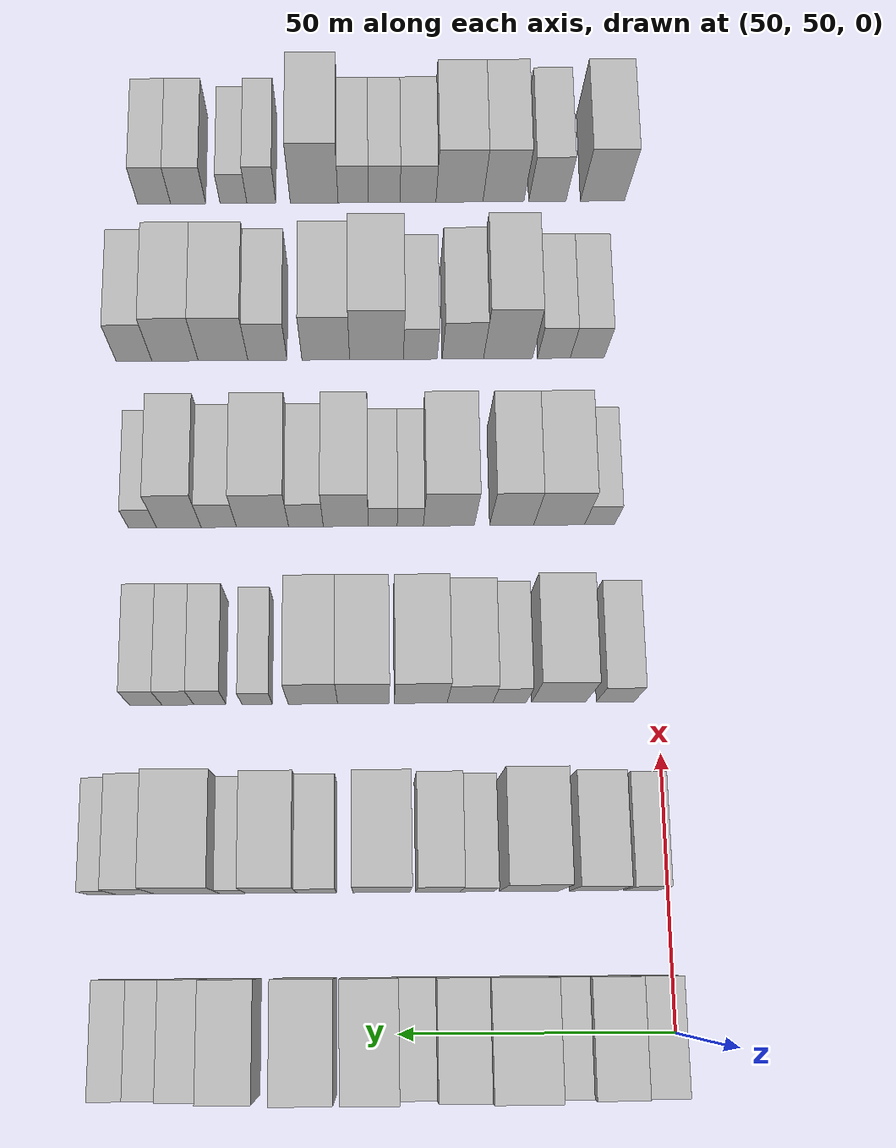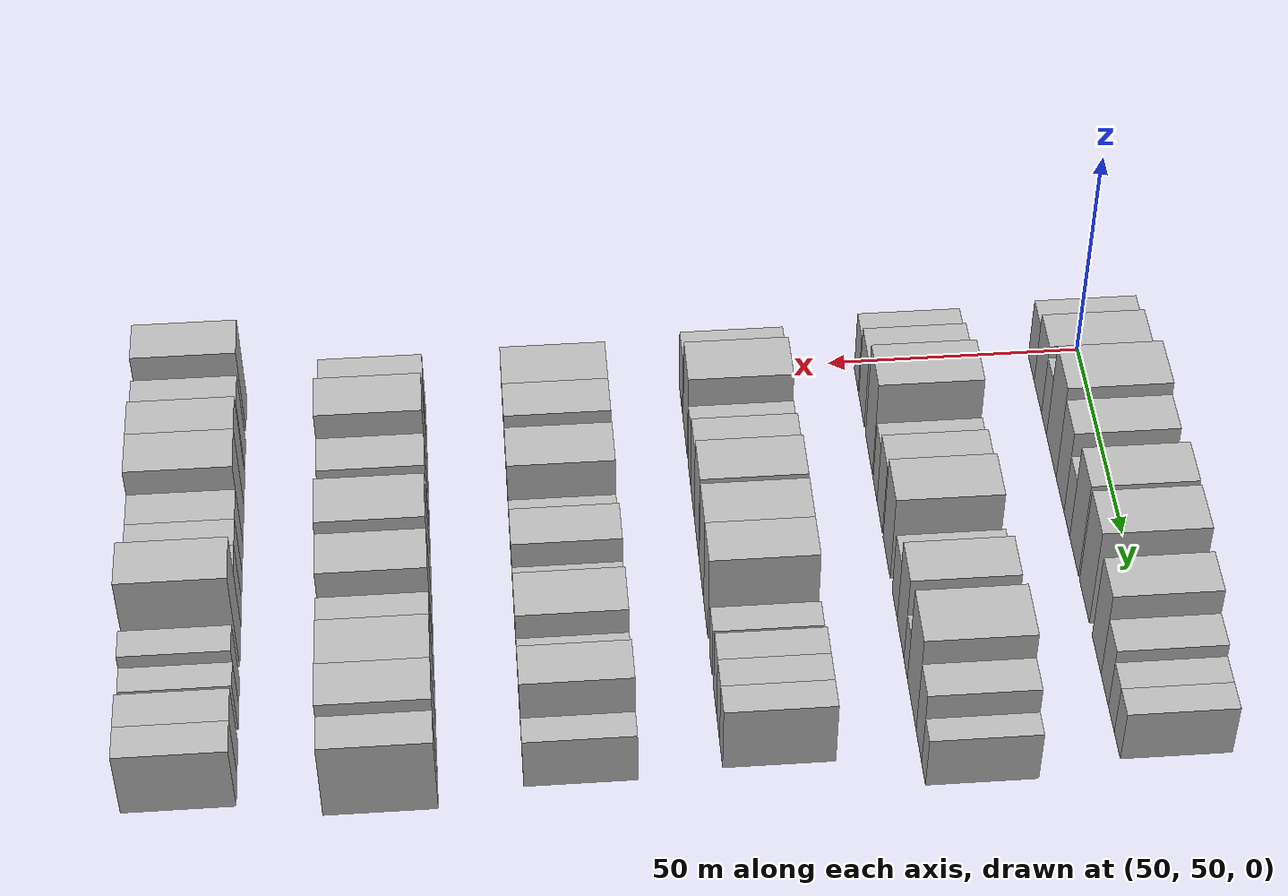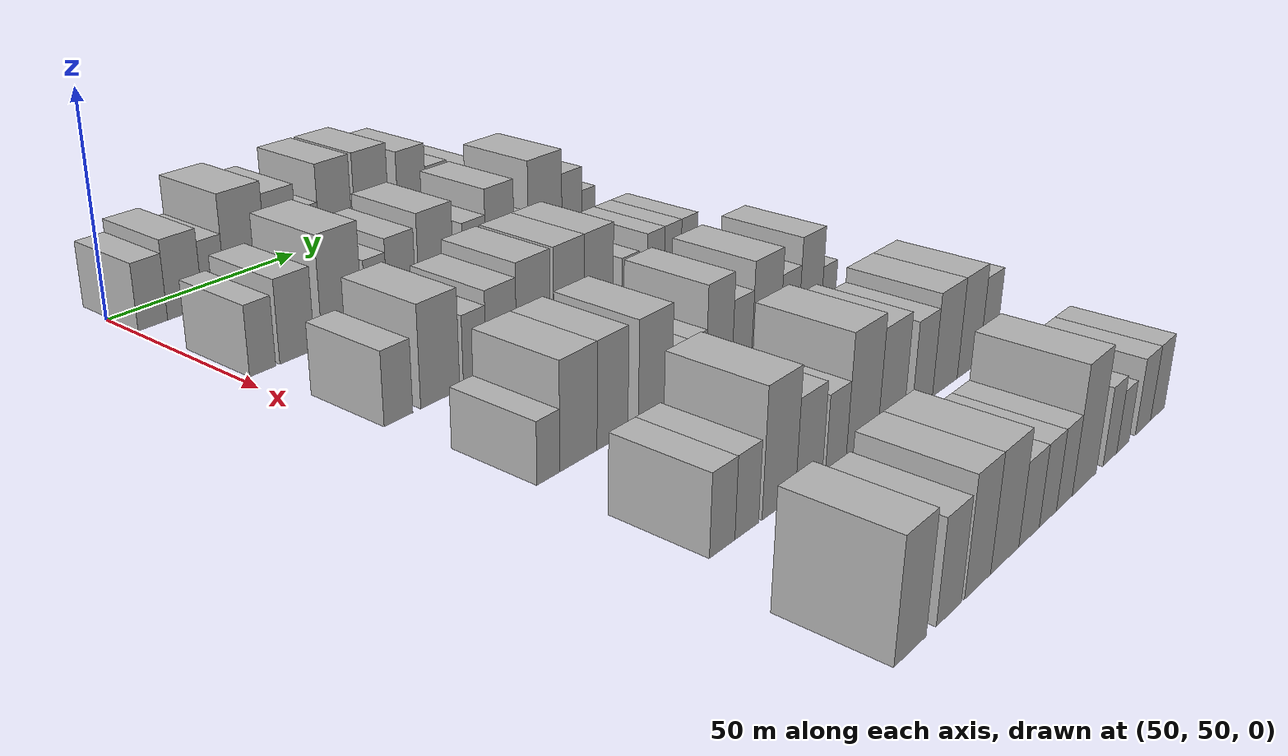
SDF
<sdf version="1.6">
 <world name="default">
  <model name="building_66">
   <static>1</static>
   <pose>50.0000 54.4470 0 0.000000 0.000000 0.000000</pose>
   <link name="link">
    <pose>0 0 7.50 0 0 0</pose>
    <collision name="collision"><geometry><box><size>20.0000 7.2798 15.0000</size></box></geometry></collision>
    <visual name="visual">
     <cast_shadows>0</cast_shadows>
     <geometry><box><size>20.0000 7.2798 15.0000</size></box></geometry>
     <material>
      <script>
       <uri>model://HANNAS_wall/materials/scripts</uri>
       <uri>model://HANNAS_wall/materials/textures</uri>
       <name>vrc/HANNAS_wall</name>
      </script>
     </material>
    </visual>
   </link>
  </model>
  <model name="building_67">
   <static>1</static>
   <pose>50.0000 62.5787 0 0.000000 0.000000 0.000000</pose>
   <link name="link">
    <pose>0 0 9.00 0 0 0</pose>
    <collision name="collision"><geometry><box><size>20.0000 8.9835 18.0000</size></box></geometry></collision>
    <visual name="visual">
     <cast_shadows>0</cast_shadows>
     <geometry><box><size>20.0000 8.9835 18.0000</size></box></geometry>
     <material>
      <script>
       <uri>model://HANNAS_wall/materials/scripts</uri>
       <uri>model://HANNAS_wall/materials/textures</uri>
       <name>vrc/HANNAS_wall</name>
      </script>
     </material>
    </visual>
   </link>
  </model>
  <model name="building_68">
   <static>1</static>
   <pose>50.0000 70.1218 0 0.000000 0.000000 0.000000</pose>
   <link name="link">
    <pose>0 0 7.50 0 0 0</pose>
    <collision name="collision"><geometry><box><size>20.0000 6.1028 15.0000</size></box></geometry></collision>
    <visual name="visual">
     <cast_shadows>0</cast_shadows>
     <geometry><box><size>20.0000 6.1028 15.0000</size></box></geometry>
     <material>
      <script>
       <uri>model://HANNAS_wall/materials/scripts</uri>
       <uri>model://HANNAS_wall/materials/textures</uri>
       <name>vrc/HANNAS_wall</name>
      </script>
     </material>
    </visual>
   </link>
  </model>
  <model name="building_69">
   <static>1</static>
   <pose>50.0000 78.8997 0 0.000000 0.000000 0.000000</pose>
   <link name="link">
    <pose>0 0 12.00 0 0 0</pose>
    <collision name="collision"><geometry><box><size>20.0000 11.4530 24.0000</size></box></geometry></collision>
    <visual name="visual">
     <cast_shadows>0</cast_shadows>
     <geometry><box><size>20.0000 11.4530 24.0000</size></box></geometry>
     <material>
      <script>
       <uri>model://HANNAS_wall/materials/scripts</uri>
       <uri>model://HANNAS_wall/materials/textures</uri>
       <name>vrc/HANNAS_wall</name>
      </script>
     </material>
    </visual>
   </link>
  </model>
  <model name="building_70">
   <static>1</static>
   <pose>50.0000 89.1054 0 0.000000 0.000000 0.000000</pose>
   <link name="link">
    <pose>0 0 10.50 0 0 0</pose>
    <collision name="collision"><geometry><box><size>20.0000 8.9584 21.0000</size></box></geometry></collision>
    <visual name="visual">
     <cast_shadows>0</cast_shadows>
     <geometry><box><size>20.0000 8.9584 21.0000</size></box></geometry>
     <material>
      <script>
       <uri>model://HANNAS_wall/materials/scripts</uri>
       <uri>model://HANNAS_wall/materials/textures</uri>
       <name>vrc/HANNAS_wall</name>
      </script>
     </material>
    </visual>
   </link>
  </model>
  <model name="building_71">
   <static>1</static>
   <pose>50.0000 96.8214 0 0.000000 0.000000 0.000000</pose>
   <link name="link">
    <pose>0 0 7.50 0 0 0</pose>
    <collision name="collision"><geometry><box><size>20.0000 6.4737 15.0000</size></box></geometry></collision>
    <visual name="visual">
     <cast_shadows>0</cast_shadows>
     <geometry><box><size>20.0000 6.4737 15.0000</size></box></geometry>
     <material>
      <script>
       <uri>model://HANNAS_wall/materials/scripts</uri>
       <uri>model://HANNAS_wall/materials/textures</uri>
       <name>vrc/HANNAS_wall</name>
      </script>
     </material>
    </visual>
   </link>
  </model>
  <model name="building_72">
   <static>1</static>
   <pose>50.0000 105.0156 0 0.000000 0.000000 0.000000</pose>
   <link name="link">
    <pose>0 0 12.00 0 0 0</pose>
    <collision name="collision"><geometry><box><size>20.0000 9.9146 24.0000</size></box></geometry></collision>
    <visual name="visual">
     <cast_shadows>0</cast_shadows>
     <geometry><box><size>20.0000 9.9146 24.0000</size></box></geometry>
     <material>
      <script>
       <uri>model://HANNAS_wall/materials/scripts</uri>
       <uri>model://HANNAS_wall/materials/textures</uri>
       <name>vrc/HANNAS_wall</name>
      </script>
     </material>
    </visual>
   </link>
  </model>
  <model name="building_73">
   <static>1</static>
   <pose>50.0000 116.2877 0 0.000000 0.000000 0.000000</pose>
   <link name="link">
    <pose>0 0 12.00 0 0 0</pose>
    <collision name="collision"><geometry><box><size>20.0000 10.6297 24.0000</size></box></geometry></collision>
    <visual name="visual">
     <cast_shadows>0</cast_shadows>
     <geometry><box><size>20.0000 10.6297 24.0000</size></box></geometry>
     <material>
      <script>
       <uri>model://HANNAS_wall/materials/scripts</uri>
       <uri>model://HANNAS_wall/materials/textures</uri>
       <name>vrc/HANNAS_wall</name>
      </script>
     </material>
    </visual>
   </link>
  </model>
  <model name="building_74">
   <static>1</static>
   <pose>50.0000 129.2800 0 0.000000 0.000000 0.000000</pose>
   <link name="link">
    <pose>0 0 10.50 0 0 0</pose>
    <collision name="collision"><geometry><box><size>20.0000 9.3547 21.0000</size></box></geometry></collision>
    <visual name="visual">
     <cast_shadows>0</cast_shadows>
     <geometry><box><size>20.0000 9.3547 21.0000</size></box></geometry>
     <material>
      <script>
       <uri>model://HANNAS_wall/materials/scripts</uri>
       <uri>model://HANNAS_wall/materials/textures</uri>
       <name>vrc/HANNAS_wall</name>
      </script>
     </material>
    </visual>
   </link>
  </model>
  <model name="building_75">
   <static>1</static>
   <pose>50.0000 137.6852 0 0.000000 0.000000 0.000000</pose>
   <link name="link">
    <pose>0 0 7.50 0 0 0</pose>
    <collision name="collision"><geometry><box><size>20.0000 7.4558 15.0000</size></box></geometry></collision>
    <visual name="visual">
     <cast_shadows>0</cast_shadows>
     <geometry><box><size>20.0000 7.4558 15.0000</size></box></geometry>
     <material>
      <script>
       <uri>model://HANNAS_wall/materials/scripts</uri>
       <uri>model://HANNAS_wall/materials/textures</uri>
       <name>vrc/HANNAS_wall</name>
      </script>
     </material>
    </visual>
   </link>
  </model>
  <model name="building_76">
   <static>1</static>
   <pose>50.0000 144.4017 0 0.000000 0.000000 0.000000</pose>
   <link name="link">
    <pose>0 0 6.00 0 0 0</pose>
    <collision name="collision"><geometry><box><size>20.0000 5.9772 12.0000</size></box></geometry></collision>
    <visual name="visual">
     <cast_shadows>0</cast_shadows>
     <geometry><box><size>20.0000 5.9772 12.0000</size></box></geometry>
     <material>
      <script>
       <uri>model://HANNAS_wall/materials/scripts</uri>
       <uri>model://HANNAS_wall/materials/textures</uri>
       <name>vrc/HANNAS_wall</name>
      </script>
     </material>
    </visual>
   </link>
  </model>
  <model name="building_77">
   <static>1</static>
   <pose>50.0000 150.3797 0 0.000000 0.000000 0.000000</pose>
   <link name="link">
    <pose>0 0 6.00 0 0 0</pose>
    <collision name="collision"><geometry><box><size>20.0000 5.9789 12.0000</size></box></geometry></collision>
    <visual name="visual">
     <cast_shadows>0</cast_shadows>
     <geometry><box><size>20.0000 5.9789 12.0000</size></box></geometry>
     <material>
      <script>
       <uri>model://HANNAS_wall/materials/scripts</uri>
       <uri>model://HANNAS_wall/materials/textures</uri>
       <name>vrc/HANNAS_wall</name>
      </script>
     </material>
    </visual>
   </link>
  </model>
  <model name="building_192">
   <static>1</static>
   <pose>85.0000 55.1104 0 0.000000 0.000000 0.000000</pose>
   <link name="link">
    <pose>0 0 7.50 0 0 0</pose>
    <collision name="collision"><geometry><box><size>20.0000 6.4103 15.0000</size></box></geometry></collision>
    <visual name="visual">
     <cast_shadows>0</cast_shadows>
     <geometry><box><size>20.0000 6.4103 15.0000</size></box></geometry>
     <material>
      <script>
       <uri>model://HANNAS_wall/materials/scripts</uri>
       <uri>model://HANNAS_wall/materials/textures</uri>
       <name>vrc/HANNAS_wall</name>
      </script>
     </material>
    </visual>
   </link>
  </model>
  <model name="building_193">
   <static>1</static>
   <pose>85.0000 63.7666 0 0.000000 0.000000 0.000000</pose>
   <link name="link">
    <pose>0 0 9.00 0 0 0</pose>
    <collision name="collision"><geometry><box><size>20.0000 8.9021 18.0000</size></box></geometry></collision>
    <visual name="visual">
     <cast_shadows>0</cast_shadows>
     <geometry><box><size>20.0000 8.9021 18.0000</size></box></geometry>
     <material>
      <script>
       <uri>model://HANNAS_wall/materials/scripts</uri>
       <uri>model://HANNAS_wall/materials/textures</uri>
       <name>vrc/HANNAS_wall</name>
      </script>
     </material>
    </visual>
   </link>
  </model>
  <model name="building_194">
   <static>1</static>
   <pose>85.0000 75.6887 0 0.000000 0.000000 0.000000</pose>
   <link name="link">
    <pose>0 0 12.00 0 0 0</pose>
    <collision name="collision"><geometry><box><size>20.0000 10.9421 24.0000</size></box></geometry></collision>
    <visual name="visual">
     <cast_shadows>0</cast_shadows>
     <geometry><box><size>20.0000 10.9421 24.0000</size></box></geometry>
     <material>
      <script>
       <uri>model://HANNAS_wall/materials/scripts</uri>
       <uri>model://HANNAS_wall/materials/textures</uri>
       <name>vrc/HANNAS_wall</name>
      </script>
     </material>
    </visual>
   </link>
  </model>
  <model name="building_195">
   <static>1</static>
   <pose>85.0000 85.2064 0 0.000000 0.000000 0.000000</pose>
   <link name="link">
    <pose>0 0 7.50 0 0 0</pose>
    <collision name="collision"><geometry><box><size>20.0000 6.0934 15.0000</size></box></geometry></collision>
    <visual name="visual">
     <cast_shadows>0</cast_shadows>
     <geometry><box><size>20.0000 6.0934 15.0000</size></box></geometry>
     <material>
      <script>
       <uri>model://HANNAS_wall/materials/scripts</uri>
       <uri>model://HANNAS_wall/materials/textures</uri>
       <name>vrc/HANNAS_wall</name>
      </script>
     </material>
    </visual>
   </link>
  </model>
  <model name="building_196">
   <static>1</static>
   <pose>85.0000 92.3590 0 0.000000 0.000000 0.000000</pose>
   <link name="link">
    <pose>0 0 9.00 0 0 0</pose>
    <collision name="collision"><geometry><box><size>20.0000 8.2117 18.0000</size></box></geometry></collision>
    <visual name="visual">
     <cast_shadows>0</cast_shadows>
     <geometry><box><size>20.0000 8.2117 18.0000</size></box></geometry>
     <material>
      <script>
       <uri>model://HANNAS_wall/materials/scripts</uri>
       <uri>model://HANNAS_wall/materials/textures</uri>
       <name>vrc/HANNAS_wall</name>
      </script>
     </material>
    </visual>
   </link>
  </model>
  <model name="building_197">
   <static>1</static>
   <pose>85.0000 102.6943 0 0.000000 0.000000 0.000000</pose>
   <link name="link">
    <pose>0 0 10.50 0 0 0</pose>
    <collision name="collision"><geometry><box><size>20.0000 10.4591 21.0000</size></box></geometry></collision>
    <visual name="visual">
     <cast_shadows>0</cast_shadows>
     <geometry><box><size>20.0000 10.4591 21.0000</size></box></geometry>
     <material>
      <script>
       <uri>model://HANNAS_wall/materials/scripts</uri>
       <uri>model://HANNAS_wall/materials/textures</uri>
       <name>vrc/HANNAS_wall</name>
      </script>
     </material>
    </visual>
   </link>
  </model>
  <model name="building_198">
   <static>1</static>
   <pose>85.0000 114.5652 0 0.000000 0.000000 0.000000</pose>
   <link name="link">
    <pose>0 0 7.50 0 0 0</pose>
    <collision name="collision"><geometry><box><size>20.0000 7.2826 15.0000</size></box></geometry></collision>
    <visual name="visual">
     <cast_shadows>0</cast_shadows>
     <geometry><box><size>20.0000 7.2826 15.0000</size></box></geometry>
     <material>
      <script>
       <uri>model://HANNAS_wall/materials/scripts</uri>
       <uri>model://HANNAS_wall/materials/textures</uri>
       <name>vrc/HANNAS_wall</name>
      </script>
     </material>
    </visual>
   </link>
  </model>
  <model name="building_199">
   <static>1</static>
   <pose>85.0000 122.9009 0 0.000000 0.000000 0.000000</pose>
   <link name="link">
    <pose>0 0 10.50 0 0 0</pose>
    <collision name="collision"><geometry><box><size>20.0000 9.3888 21.0000</size></box></geometry></collision>
    <visual name="visual">
     <cast_shadows>0</cast_shadows>
     <geometry><box><size>20.0000 9.3888 21.0000</size></box></geometry>
     <material>
      <script>
       <uri>model://HANNAS_wall/materials/scripts</uri>
       <uri>model://HANNAS_wall/materials/textures</uri>
       <name>vrc/HANNAS_wall</name>
      </script>
     </material>
    </visual>
   </link>
  </model>
  <model name="building_200">
   <static>1</static>
   <pose>85.0000 130.0143 0 0.000000 0.000000 0.000000</pose>
   <link name="link">
    <pose>0 0 6.00 0 0 0</pose>
    <collision name="collision"><geometry><box><size>20.0000 4.8380 12.0000</size></box></geometry></collision>
    <visual name="visual">
     <cast_shadows>0</cast_shadows>
     <geometry><box><size>20.0000 4.8380 12.0000</size></box></geometry>
     <material>
      <script>
       <uri>model://HANNAS_wall/materials/scripts</uri>
       <uri>model://HANNAS_wall/materials/textures</uri>
       <name>vrc/HANNAS_wall</name>
      </script>
     </material>
    </visual>
   </link>
  </model>
  <model name="building_201">
   <static>1</static>
   <pose>85.0000 138.3556 0 0.000000 0.000000 0.000000</pose>
   <link name="link">
    <pose>0 0 12.00 0 0 0</pose>
    <collision name="collision"><geometry><box><size>20.0000 11.8447 24.0000</size></box></geometry></collision>
    <visual name="visual">
     <cast_shadows>0</cast_shadows>
     <geometry><box><size>20.0000 11.8447 24.0000</size></box></geometry>
     <material>
      <script>
       <uri>model://HANNAS_wall/materials/scripts</uri>
       <uri>model://HANNAS_wall/materials/textures</uri>
       <name>vrc/HANNAS_wall</name>
      </script>
     </material>
    </visual>
   </link>
  </model>
  <model name="building_202">
   <static>1</static>
   <pose>85.0000 147.9140 0 0.000000 0.000000 0.000000</pose>
   <link name="link">
    <pose>0 0 9.00 0 0 0</pose>
    <collision name="collision"><geometry><box><size>20.0000 7.2719 18.0000</size></box></geometry></collision>
    <visual name="visual">
     <cast_shadows>0</cast_shadows>
     <geometry><box><size>20.0000 7.2719 18.0000</size></box></geometry>
     <material>
      <script>
       <uri>model://HANNAS_wall/materials/scripts</uri>
       <uri>model://HANNAS_wall/materials/textures</uri>
       <name>vrc/HANNAS_wall</name>
      </script>
     </material>
    </visual>
   </link>
  </model>
  <model name="building_203">
   <static>1</static>
   <pose>85.0000 154.0907 0 0.000000 0.000000 0.000000</pose>
   <link name="link">
    <pose>0 0 6.00 0 0 0</pose>
    <collision name="collision"><geometry><box><size>20.0000 5.0816 12.0000</size></box></geometry></collision>
    <visual name="visual">
     <cast_shadows>0</cast_shadows>
     <geometry><box><size>20.0000 5.0816 12.0000</size></box></geometry>
     <material>
      <script>
       <uri>model://HANNAS_wall/materials/scripts</uri>
       <uri>model://HANNAS_wall/materials/textures</uri>
       <name>vrc/HANNAS_wall</name>
      </script>
     </material>
    </visual>
   </link>
  </model>
  <model name="building_325">
   <static>1</static>
   <pose>120.0000 58.0963 0 0.000000 0.000000 0.000000</pose>
   <link name="link">
    <pose>0 0 7.50 0 0 0</pose>
    <collision name="collision"><geometry><box><size>20.0000 7.1529 15.0000</size></box></geometry></collision>
    <visual name="visual">
     <cast_shadows>0</cast_shadows>
     <geometry><box><size>20.0000 7.1529 15.0000</size></box></geometry>
     <material>
      <script>
       <uri>model://HANNAS_wall/materials/scripts</uri>
       <uri>model://HANNAS_wall/materials/textures</uri>
       <name>vrc/HANNAS_wall</name>
      </script>
     </material>
    </visual>
   </link>
  </model>
  <model name="building_326">
   <static>1</static>
   <pose>120.0000 68.8147 0 0.000000 0.000000 0.000000</pose>
   <link name="link">
    <pose>0 0 10.50 0 0 0</pose>
    <collision name="collision"><geometry><box><size>20.0000 10.2838 21.0000</size></box></geometry></collision>
    <visual name="visual">
     <cast_shadows>0</cast_shadows>
     <geometry><box><size>20.0000 10.2838 21.0000</size></box></geometry>
     <material>
      <script>
       <uri>model://HANNAS_wall/materials/scripts</uri>
       <uri>model://HANNAS_wall/materials/textures</uri>
       <name>vrc/HANNAS_wall</name>
      </script>
     </material>
    </visual>
   </link>
  </model>
  <model name="building_327">
   <static>1</static>
   <pose>120.0000 78.1294 0 0.000000 0.000000 0.000000</pose>
   <link name="link">
    <pose>0 0 7.50 0 0 0</pose>
    <collision name="collision"><geometry><box><size>20.0000 6.3455 15.0000</size></box></geometry></collision>
    <visual name="visual">
     <cast_shadows>0</cast_shadows>
     <geometry><box><size>20.0000 6.3455 15.0000</size></box></geometry>
     <material>
      <script>
       <uri>model://HANNAS_wall/materials/scripts</uri>
       <uri>model://HANNAS_wall/materials/textures</uri>
       <name>vrc/HANNAS_wall</name>
      </script>
     </material>
    </visual>
   </link>
  </model>
  <model name="building_328">
   <static>1</static>
   <pose>120.0000 85.6486 0 0.000000 0.000000 0.000000</pose>
   <link name="link">
    <pose>0 0 9.00 0 0 0</pose>
    <collision name="collision"><geometry><box><size>20.0000 8.6930 18.0000</size></box></geometry></collision>
    <visual name="visual">
     <cast_shadows>0</cast_shadows>
     <geometry><box><size>20.0000 8.6930 18.0000</size></box></geometry>
     <material>
      <script>
       <uri>model://HANNAS_wall/materials/scripts</uri>
       <uri>model://HANNAS_wall/materials/textures</uri>
       <name>vrc/HANNAS_wall</name>
      </script>
     </material>
    </visual>
   </link>
  </model>
  <model name="building_329">
   <static>1</static>
   <pose>120.0000 95.0165 0 0.000000 0.000000 0.000000</pose>
   <link name="link">
    <pose>0 0 10.50 0 0 0</pose>
    <collision name="collision"><geometry><box><size>20.0000 10.0428 21.0000</size></box></geometry></collision>
    <visual name="visual">
     <cast_shadows>0</cast_shadows>
     <geometry><box><size>20.0000 10.0428 21.0000</size></box></geometry>
     <material>
      <script>
       <uri>model://HANNAS_wall/materials/scripts</uri>
       <uri>model://HANNAS_wall/materials/textures</uri>
       <name>vrc/HANNAS_wall</name>
      </script>
     </material>
    </visual>
   </link>
  </model>
  <model name="building_330">
   <static>1</static>
   <pose>120.0000 105.9020 0 0.000000 0.000000 0.000000</pose>
   <link name="link">
    <pose>0 0 10.50 0 0 0</pose>
    <collision name="collision"><geometry><box><size>20.0000 9.7281 21.0000</size></box></geometry></collision>
    <visual name="visual">
     <cast_shadows>0</cast_shadows>
     <geometry><box><size>20.0000 9.7281 21.0000</size></box></geometry>
     <material>
      <script>
       <uri>model://HANNAS_wall/materials/scripts</uri>
       <uri>model://HANNAS_wall/materials/textures</uri>
       <name>vrc/HANNAS_wall</name>
      </script>
     </material>
    </visual>
   </link>
  </model>
  <model name="building_331">
   <static>1</static>
   <pose>120.0000 115.4498 0 0.000000 0.000000 0.000000</pose>
   <link name="link">
    <pose>0 0 10.50 0 0 0</pose>
    <collision name="collision"><geometry><box><size>20.0000 9.3677 21.0000</size></box></geometry></collision>
    <visual name="visual">
     <cast_shadows>0</cast_shadows>
     <geometry><box><size>20.0000 9.3677 21.0000</size></box></geometry>
     <material>
      <script>
       <uri>model://HANNAS_wall/materials/scripts</uri>
       <uri>model://HANNAS_wall/materials/textures</uri>
       <name>vrc/HANNAS_wall</name>
      </script>
     </material>
    </visual>
   </link>
  </model>
  <model name="building_332">
   <static>1</static>
   <pose>120.0000 126.0148 0 0.000000 0.000000 0.000000</pose>
   <link name="link">
    <pose>0 0 6.00 0 0 0</pose>
    <collision name="collision"><geometry><box><size>20.0000 5.7623 12.0000</size></box></geometry></collision>
    <visual name="visual">
     <cast_shadows>0</cast_shadows>
     <geometry><box><size>20.0000 5.7623 12.0000</size></box></geometry>
     <material>
      <script>
       <uri>model://HANNAS_wall/materials/scripts</uri>
       <uri>model://HANNAS_wall/materials/textures</uri>
       <name>vrc/HANNAS_wall</name>
      </script>
     </material>
    </visual>
   </link>
  </model>
  <model name="building_333">
   <static>1</static>
   <pose>120.0000 134.9486 0 0.000000 0.000000 0.000000</pose>
   <link name="link">
    <pose>0 0 7.50 0 0 0</pose>
    <collision name="collision"><geometry><box><size>20.0000 6.1052 15.0000</size></box></geometry></collision>
    <visual name="visual">
     <cast_shadows>0</cast_shadows>
     <geometry><box><size>20.0000 6.1052 15.0000</size></box></geometry>
     <material>
      <script>
       <uri>model://HANNAS_wall/materials/scripts</uri>
       <uri>model://HANNAS_wall/materials/textures</uri>
       <name>vrc/HANNAS_wall</name>
      </script>
     </material>
    </visual>
   </link>
  </model>
  <model name="building_334">
   <static>1</static>
   <pose>120.0000 141.0323 0 0.000000 0.000000 0.000000</pose>
   <link name="link">
    <pose>0 0 7.50 0 0 0</pose>
    <collision name="collision"><geometry><box><size>20.0000 6.0623 15.0000</size></box></geometry></collision>
    <visual name="visual">
     <cast_shadows>0</cast_shadows>
     <geometry><box><size>20.0000 6.0623 15.0000</size></box></geometry>
     <material>
      <script>
       <uri>model://HANNAS_wall/materials/scripts</uri>
       <uri>model://HANNAS_wall/materials/textures</uri>
       <name>vrc/HANNAS_wall</name>
      </script>
     </material>
    </visual>
   </link>
  </model>
  <model name="building_335">
   <static>1</static>
   <pose>120.0000 147.0883 0 0.000000 0.000000 0.000000</pose>
   <link name="link">
    <pose>0 0 7.50 0 0 0</pose>
    <collision name="collision"><geometry><box><size>20.0000 6.0497 15.0000</size></box></geometry></collision>
    <visual name="visual">
     <cast_shadows>0</cast_shadows>
     <geometry><box><size>20.0000 6.0497 15.0000</size></box></geometry>
     <material>
      <script>
       <uri>model://HANNAS_wall/materials/scripts</uri>
       <uri>model://HANNAS_wall/materials/textures</uri>
       <name>vrc/HANNAS_wall</name>
      </script>
     </material>
    </visual>
   </link>
  </model>
  <model name="building_456">
   <static>1</static>
   <pose>155.0000 59.4836 0 0.000000 0.000000 0.000000</pose>
   <link name="link">
    <pose>0 0 6.00 0 0 0</pose>
    <collision name="collision"><geometry><box><size>20.0000 5.8543 12.0000</size></box></geometry></collision>
    <visual name="visual">
     <cast_shadows>0</cast_shadows>
     <geometry><box><size>20.0000 5.8543 12.0000</size></box></geometry>
     <material>
      <script>
       <uri>model://HANNAS_wall/materials/scripts</uri>
       <uri>model://HANNAS_wall/materials/textures</uri>
       <name>vrc/HANNAS_wall</name>
      </script>
     </material>
    </visual>
   </link>
  </model>
  <model name="building_457">
   <static>1</static>
   <pose>155.0000 67.3814 0 0.000000 0.000000 0.000000</pose>
   <link name="link">
    <pose>0 0 10.50 0 0 0</pose>
    <collision name="collision"><geometry><box><size>20.0000 9.9413 21.0000</size></box></geometry></collision>
    <visual name="visual">
     <cast_shadows>0</cast_shadows>
     <geometry><box><size>20.0000 9.9413 21.0000</size></box></geometry>
     <material>
      <script>
       <uri>model://HANNAS_wall/materials/scripts</uri>
       <uri>model://HANNAS_wall/materials/textures</uri>
       <name>vrc/HANNAS_wall</name>
      </script>
     </material>
    </visual>
   </link>
  </model>
  <model name="building_458">
   <static>1</static>
   <pose>155.0000 76.6775 0 0.000000 0.000000 0.000000</pose>
   <link name="link">
    <pose>0 0 10.50 0 0 0</pose>
    <collision name="collision"><geometry><box><size>20.0000 8.6508 21.0000</size></box></geometry></collision>
    <visual name="visual">
     <cast_shadows>0</cast_shadows>
     <geometry><box><size>20.0000 8.6508 21.0000</size></box></geometry>
     <material>
      <script>
       <uri>model://HANNAS_wall/materials/scripts</uri>
       <uri>model://HANNAS_wall/materials/textures</uri>
       <name>vrc/HANNAS_wall</name>
      </script>
     </material>
    </visual>
   </link>
  </model>
  <model name="building_459">
   <static>1</static>
   <pose>155.0000 88.9965 0 0.000000 0.000000 0.000000</pose>
   <link name="link">
    <pose>0 0 10.50 0 0 0</pose>
    <collision name="collision"><geometry><box><size>20.0000 9.9871 21.0000</size></box></geometry></collision>
    <visual name="visual">
     <cast_shadows>0</cast_shadows>
     <geometry><box><size>20.0000 9.9871 21.0000</size></box></geometry>
     <material>
      <script>
       <uri>model://HANNAS_wall/materials/scripts</uri>
       <uri>model://HANNAS_wall/materials/textures</uri>
       <name>vrc/HANNAS_wall</name>
      </script>
     </material>
    </visual>
   </link>
  </model>
  <model name="building_460">
   <static>1</static>
   <pose>155.0000 96.5494 0 0.000000 0.000000 0.000000</pose>
   <link name="link">
    <pose>0 0 6.00 0 0 0</pose>
    <collision name="collision"><geometry><box><size>20.0000 5.1188 12.0000</size></box></geometry></collision>
    <visual name="visual">
     <cast_shadows>0</cast_shadows>
     <geometry><box><size>20.0000 5.1188 12.0000</size></box></geometry>
     <material>
      <script>
       <uri>model://HANNAS_wall/materials/scripts</uri>
       <uri>model://HANNAS_wall/materials/textures</uri>
       <name>vrc/HANNAS_wall</name>
      </script>
     </material>
    </visual>
   </link>
  </model>
  <model name="building_461">
   <static>1</static>
   <pose>155.0000 101.9488 0 0.000000 0.000000 0.000000</pose>
   <link name="link">
    <pose>0 0 6.00 0 0 0</pose>
    <collision name="collision"><geometry><box><size>20.0000 5.6800 12.0000</size></box></geometry></collision>
    <visual name="visual">
     <cast_shadows>0</cast_shadows>
     <geometry><box><size>20.0000 5.6800 12.0000</size></box></geometry>
     <material>
      <script>
       <uri>model://HANNAS_wall/materials/scripts</uri>
       <uri>model://HANNAS_wall/materials/textures</uri>
       <name>vrc/HANNAS_wall</name>
      </script>
     </material>
    </visual>
   </link>
  </model>
  <model name="building_462">
   <static>1</static>
   <pose>155.0000 109.1701 0 0.000000 0.000000 0.000000</pose>
   <link name="link">
    <pose>0 0 10.50 0 0 0</pose>
    <collision name="collision"><geometry><box><size>20.0000 8.7626 21.0000</size></box></geometry></collision>
    <visual name="visual">
     <cast_shadows>0</cast_shadows>
     <geometry><box><size>20.0000 8.7626 21.0000</size></box></geometry>
     <material>
      <script>
       <uri>model://HANNAS_wall/materials/scripts</uri>
       <uri>model://HANNAS_wall/materials/textures</uri>
       <name>vrc/HANNAS_wall</name>
      </script>
     </material>
    </visual>
   </link>
  </model>
  <model name="building_463">
   <static>1</static>
   <pose>155.0000 116.9474 0 0.000000 0.000000 0.000000</pose>
   <link name="link">
    <pose>0 0 7.50 0 0 0</pose>
    <collision name="collision"><geometry><box><size>20.0000 6.7921 15.0000</size></box></geometry></collision>
    <visual name="visual">
     <cast_shadows>0</cast_shadows>
     <geometry><box><size>20.0000 6.7921 15.0000</size></box></geometry>
     <material>
      <script>
       <uri>model://HANNAS_wall/materials/scripts</uri>
       <uri>model://HANNAS_wall/materials/textures</uri>
       <name>vrc/HANNAS_wall</name>
      </script>
     </material>
    </visual>
   </link>
  </model>
  <model name="building_464">
   <static>1</static>
   <pose>155.0000 125.4302 0 0.000000 0.000000 0.000000</pose>
   <link name="link">
    <pose>0 0 10.50 0 0 0</pose>
    <collision name="collision"><geometry><box><size>20.0000 10.1734 21.0000</size></box></geometry></collision>
    <visual name="visual">
     <cast_shadows>0</cast_shadows>
     <geometry><box><size>20.0000 10.1734 21.0000</size></box></geometry>
     <material>
      <script>
       <uri>model://HANNAS_wall/materials/scripts</uri>
       <uri>model://HANNAS_wall/materials/textures</uri>
       <name>vrc/HANNAS_wall</name>
      </script>
     </material>
    </visual>
   </link>
  </model>
  <model name="building_465">
   <static>1</static>
   <pose>155.0000 133.9795 0 0.000000 0.000000 0.000000</pose>
   <link name="link">
    <pose>0 0 7.50 0 0 0</pose>
    <collision name="collision"><geometry><box><size>20.0000 6.9253 15.0000</size></box></geometry></collision>
    <visual name="visual">
     <cast_shadows>0</cast_shadows>
     <geometry><box><size>20.0000 6.9253 15.0000</size></box></geometry>
     <material>
      <script>
       <uri>model://HANNAS_wall/materials/scripts</uri>
       <uri>model://HANNAS_wall/materials/textures</uri>
       <name>vrc/HANNAS_wall</name>
      </script>
     </material>
    </visual>
   </link>
  </model>
  <model name="building_466">
   <static>1</static>
   <pose>155.0000 141.7993 0 0.000000 0.000000 0.000000</pose>
   <link name="link">
    <pose>0 0 10.50 0 0 0</pose>
    <collision name="collision"><geometry><box><size>20.0000 8.7143 21.0000</size></box></geometry></collision>
    <visual name="visual">
     <cast_shadows>0</cast_shadows>
     <geometry><box><size>20.0000 8.7143 21.0000</size></box></geometry>
     <material>
      <script>
       <uri>model://HANNAS_wall/materials/scripts</uri>
       <uri>model://HANNAS_wall/materials/textures</uri>
       <name>vrc/HANNAS_wall</name>
      </script>
     </material>
    </visual>
   </link>
  </model>
  <model name="building_467">
   <static>1</static>
   <pose>155.0000 148.9132 0 0.000000 0.000000 0.000000</pose>
   <link name="link">
    <pose>0 0 6.00 0 0 0</pose>
    <collision name="collision"><geometry><box><size>20.0000 5.5136 12.0000</size></box></geometry></collision>
    <visual name="visual">
     <cast_shadows>0</cast_shadows>
     <geometry><box><size>20.0000 5.5136 12.0000</size></box></geometry>
     <material>
      <script>
       <uri>model://HANNAS_wall/materials/scripts</uri>
       <uri>model://HANNAS_wall/materials/textures</uri>
       <name>vrc/HANNAS_wall</name>
      </script>
     </material>
    </visual>
   </link>
  </model>
  <model name="building_581">
   <static>1</static>
   <pose>190.0000 60.3836 0 0.000000 0.000000 0.000000</pose>
   <link name="link">
    <pose>0 0 7.50 0 0 0</pose>
    <collision name="collision"><geometry><box><size>20.0000 6.8409 15.0000</size></box></geometry></collision>
    <visual name="visual">
     <cast_shadows>0</cast_shadows>
     <geometry><box><size>20.0000 6.8409 15.0000</size></box></geometry>
     <material>
      <script>
       <uri>model://HANNAS_wall/materials/scripts</uri>
       <uri>model://HANNAS_wall/materials/textures</uri>
       <name>vrc/HANNAS_wall</name>
      </script>
     </material>
    </visual>
   </link>
  </model>
  <model name="building_582">
   <static>1</static>
   <pose>190.0000 67.1134 0 0.000000 0.000000 0.000000</pose>
   <link name="link">
    <pose>0 0 7.50 0 0 0</pose>
    <collision name="collision"><geometry><box><size>20.0000 6.6188 15.0000</size></box></geometry></collision>
    <visual name="visual">
     <cast_shadows>0</cast_shadows>
     <geometry><box><size>20.0000 6.6188 15.0000</size></box></geometry>
     <material>
      <script>
       <uri>model://HANNAS_wall/materials/scripts</uri>
       <uri>model://HANNAS_wall/materials/textures</uri>
       <name>vrc/HANNAS_wall</name>
      </script>
     </material>
    </visual>
   </link>
  </model>
  <model name="building_583">
   <static>1</static>
   <pose>190.0000 76.3695 0 0.000000 0.000000 0.000000</pose>
   <link name="link">
    <pose>0 0 12.00 0 0 0</pose>
    <collision name="collision"><geometry><box><size>20.0000 9.8935 24.0000</size></box></geometry></collision>
    <visual name="visual">
     <cast_shadows>0</cast_shadows>
     <geometry><box><size>20.0000 9.8935 24.0000</size></box></geometry>
     <material>
      <script>
       <uri>model://HANNAS_wall/materials/scripts</uri>
       <uri>model://HANNAS_wall/materials/textures</uri>
       <name>vrc/HANNAS_wall</name>
      </script>
     </material>
    </visual>
   </link>
  </model>
  <model name="building_584">
   <static>1</static>
   <pose>190.0000 85.4940 0 0.000000 0.000000 0.000000</pose>
   <link name="link">
    <pose>0 0 9.00 0 0 0</pose>
    <collision name="collision"><geometry><box><size>20.0000 8.3554 18.0000</size></box></geometry></collision>
    <visual name="visual">
     <cast_shadows>0</cast_shadows>
     <geometry><box><size>20.0000 8.3554 18.0000</size></box></geometry>
     <material>
      <script>
       <uri>model://HANNAS_wall/materials/scripts</uri>
       <uri>model://HANNAS_wall/materials/textures</uri>
       <name>vrc/HANNAS_wall</name>
      </script>
     </material>
    </visual>
   </link>
  </model>
  <model name="building_585">
   <static>1</static>
   <pose>190.0000 94.0804 0 0.000000 0.000000 0.000000</pose>
   <link name="link">
    <pose>0 0 7.50 0 0 0</pose>
    <collision name="collision"><geometry><box><size>20.0000 6.8174 15.0000</size></box></geometry></collision>
    <visual name="visual">
     <cast_shadows>0</cast_shadows>
     <geometry><box><size>20.0000 6.8174 15.0000</size></box></geometry>
     <material>
      <script>
       <uri>model://HANNAS_wall/materials/scripts</uri>
       <uri>model://HANNAS_wall/materials/textures</uri>
       <name>vrc/HANNAS_wall</name>
      </script>
     </material>
    </visual>
   </link>
  </model>
  <model name="building_586">
   <static>1</static>
   <pose>190.0000 102.9042 0 0.000000 0.000000 0.000000</pose>
   <link name="link">
    <pose>0 0 12.00 0 0 0</pose>
    <collision name="collision"><geometry><box><size>20.0000 10.8301 24.0000</size></box></geometry></collision>
    <visual name="visual">
     <cast_shadows>0</cast_shadows>
     <geometry><box><size>20.0000 10.8301 24.0000</size></box></geometry>
     <material>
      <script>
       <uri>model://HANNAS_wall/materials/scripts</uri>
       <uri>model://HANNAS_wall/materials/textures</uri>
       <name>vrc/HANNAS_wall</name>
      </script>
     </material>
    </visual>
   </link>
  </model>
  <model name="building_587">
   <static>1</static>
   <pose>190.0000 113.1241 0 0.000000 0.000000 0.000000</pose>
   <link name="link">
    <pose>0 0 10.50 0 0 0</pose>
    <collision name="collision"><geometry><box><size>20.0000 9.6097 21.0000</size></box></geometry></collision>
    <visual name="visual">
     <cast_shadows>0</cast_shadows>
     <geometry><box><size>20.0000 9.6097 21.0000</size></box></geometry>
     <material>
      <script>
       <uri>model://HANNAS_wall/materials/scripts</uri>
       <uri>model://HANNAS_wall/materials/textures</uri>
       <name>vrc/HANNAS_wall</name>
      </script>
     </material>
    </visual>
   </link>
  </model>
  <model name="building_588">
   <static>1</static>
   <pose>190.0000 124.8856 0 0.000000 0.000000 0.000000</pose>
   <link name="link">
    <pose>0 0 9.00 0 0 0</pose>
    <collision name="collision"><geometry><box><size>20.0000 7.9133 18.0000</size></box></geometry></collision>
    <visual name="visual">
     <cast_shadows>0</cast_shadows>
     <geometry><box><size>20.0000 7.9133 18.0000</size></box></geometry>
     <material>
      <script>
       <uri>model://HANNAS_wall/materials/scripts</uri>
       <uri>model://HANNAS_wall/materials/textures</uri>
       <name>vrc/HANNAS_wall</name>
      </script>
     </material>
    </visual>
   </link>
  </model>
  <model name="building_589">
   <static>1</static>
   <pose>190.0000 133.8440 0 0.000000 0.000000 0.000000</pose>
   <link name="link">
    <pose>0 0 10.50 0 0 0</pose>
    <collision name="collision"><geometry><box><size>20.0000 10.0034 21.0000</size></box></geometry></collision>
    <visual name="visual">
     <cast_shadows>0</cast_shadows>
     <geometry><box><size>20.0000 10.0034 21.0000</size></box></geometry>
     <material>
      <script>
       <uri>model://HANNAS_wall/materials/scripts</uri>
       <uri>model://HANNAS_wall/materials/textures</uri>
       <name>vrc/HANNAS_wall</name>
      </script>
     </material>
    </visual>
   </link>
  </model>
  <model name="building_590">
   <static>1</static>
   <pose>190.0000 143.5177 0 0.000000 0.000000 0.000000</pose>
   <link name="link">
    <pose>0 0 10.50 0 0 0</pose>
    <collision name="collision"><geometry><box><size>20.0000 9.3441 21.0000</size></box></geometry></collision>
    <visual name="visual">
     <cast_shadows>0</cast_shadows>
     <geometry><box><size>20.0000 9.3441 21.0000</size></box></geometry>
     <material>
      <script>
       <uri>model://HANNAS_wall/materials/scripts</uri>
       <uri>model://HANNAS_wall/materials/textures</uri>
       <name>vrc/HANNAS_wall</name>
      </script>
     </material>
    </visual>
   </link>
  </model>
  <model name="building_591">
   <static>1</static>
   <pose>190.0000 151.7940 0 0.000000 0.000000 0.000000</pose>
   <link name="link">
    <pose>0 0 9.00 0 0 0</pose>
    <collision name="collision"><geometry><box><size>20.0000 7.2084 18.0000</size></box></geometry></collision>
    <visual name="visual">
     <cast_shadows>0</cast_shadows>
     <geometry><box><size>20.0000 7.2084 18.0000</size></box></geometry>
     <material>
      <script>
       <uri>model://HANNAS_wall/materials/scripts</uri>
       <uri>model://HANNAS_wall/materials/textures</uri>
       <name>vrc/HANNAS_wall</name>
      </script>
     </material>
    </visual>
   </link>
  </model>
  <model name="building_705">
   <static>1</static>
   <pose>225.0000 55.6756 0 0.000000 0.000000 0.000000</pose>
   <link name="link">
    <pose>0 0 10.50 0 0 0</pose>
    <collision name="collision"><geometry><box><size>20.0000 9.1870 21.0000</size></box></geometry></collision>
    <visual name="visual">
     <cast_shadows>0</cast_shadows>
     <geometry><box><size>20.0000 9.1870 21.0000</size></box></geometry>
     <material>
      <script>
       <uri>model://HANNAS_wall/materials/scripts</uri>
       <uri>model://HANNAS_wall/materials/textures</uri>
       <name>vrc/HANNAS_wall</name>
      </script>
     </material>
    </visual>
   </link>
  </model>
  <model name="building_706">
   <static>1</static>
   <pose>225.0000 67.1424 0 0.000000 0.000000 0.000000</pose>
   <link name="link">
    <pose>0 0 9.00 0 0 0</pose>
    <collision name="collision"><geometry><box><size>20.0000 7.7466 18.0000</size></box></geometry></collision>
    <visual name="visual">
     <cast_shadows>0</cast_shadows>
     <geometry><box><size>20.0000 7.7466 18.0000</size></box></geometry>
     <material>
      <script>
       <uri>model://HANNAS_wall/materials/scripts</uri>
       <uri>model://HANNAS_wall/materials/textures</uri>
       <name>vrc/HANNAS_wall</name>
      </script>
     </material>
    </visual>
   </link>
  </model>
  <model name="building_707">
   <static>1</static>
   <pose>225.0000 76.2737 0 0.000000 0.000000 0.000000</pose>
   <link name="link">
    <pose>0 0 10.50 0 0 0</pose>
    <collision name="collision"><geometry><box><size>20.0000 8.5159 21.0000</size></box></geometry></collision>
    <visual name="visual">
     <cast_shadows>0</cast_shadows>
     <geometry><box><size>20.0000 8.5159 21.0000</size></box></geometry>
     <material>
      <script>
       <uri>model://HANNAS_wall/materials/scripts</uri>
       <uri>model://HANNAS_wall/materials/textures</uri>
       <name>vrc/HANNAS_wall</name>
      </script>
     </material>
    </visual>
   </link>
  </model>
  <model name="building_708">
   <static>1</static>
   <pose>225.0000 85.4165 0 0.000000 0.000000 0.000000</pose>
   <link name="link">
    <pose>0 0 10.50 0 0 0</pose>
    <collision name="collision"><geometry><box><size>20.0000 9.7697 21.0000</size></box></geometry></collision>
    <visual name="visual">
     <cast_shadows>0</cast_shadows>
     <geometry><box><size>20.0000 9.7697 21.0000</size></box></geometry>
     <material>
      <script>
       <uri>model://HANNAS_wall/materials/scripts</uri>
       <uri>model://HANNAS_wall/materials/textures</uri>
       <name>vrc/HANNAS_wall</name>
      </script>
     </material>
    </visual>
   </link>
  </model>
  <model name="building_709">
   <static>1</static>
   <pose>225.0000 94.0474 0 0.000000 0.000000 0.000000</pose>
   <link name="link">
    <pose>0 0 7.50 0 0 0</pose>
    <collision name="collision"><geometry><box><size>20.0000 7.4923 15.0000</size></box></geometry></collision>
    <visual name="visual">
     <cast_shadows>0</cast_shadows>
     <geometry><box><size>20.0000 7.4923 15.0000</size></box></geometry>
     <material>
      <script>
       <uri>model://HANNAS_wall/materials/scripts</uri>
       <uri>model://HANNAS_wall/materials/textures</uri>
       <name>vrc/HANNAS_wall</name>
      </script>
     </material>
    </visual>
   </link>
  </model>
  <model name="building_710">
   <static>1</static>
   <pose>225.0000 101.0716 0 0.000000 0.000000 0.000000</pose>
   <link name="link">
    <pose>0 0 7.50 0 0 0</pose>
    <collision name="collision"><geometry><box><size>20.0000 6.5561 15.0000</size></box></geometry></collision>
    <visual name="visual">
     <cast_shadows>0</cast_shadows>
     <geometry><box><size>20.0000 6.5561 15.0000</size></box></geometry>
     <material>
      <script>
       <uri>model://HANNAS_wall/materials/scripts</uri>
       <uri>model://HANNAS_wall/materials/textures</uri>
       <name>vrc/HANNAS_wall</name>
      </script>
     </material>
    </visual>
   </link>
  </model>
  <model name="building_711">
   <static>1</static>
   <pose>225.0000 107.4905 0 0.000000 0.000000 0.000000</pose>
   <link name="link">
    <pose>0 0 7.50 0 0 0</pose>
    <collision name="collision"><geometry><box><size>20.0000 6.2817 15.0000</size></box></geometry></collision>
    <visual name="visual">
     <cast_shadows>0</cast_shadows>
     <geometry><box><size>20.0000 6.2817 15.0000</size></box></geometry>
     <material>
      <script>
       <uri>model://HANNAS_wall/materials/scripts</uri>
       <uri>model://HANNAS_wall/materials/textures</uri>
       <name>vrc/HANNAS_wall</name>
      </script>
     </material>
    </visual>
   </link>
  </model>
  <model name="building_712">
   <static>1</static>
   <pose>225.0000 115.5865 0 0.000000 0.000000 0.000000</pose>
   <link name="link">
    <pose>0 0 12.00 0 0 0</pose>
    <collision name="collision"><geometry><box><size>20.0000 9.9104 24.0000</size></box></geometry></collision>
    <visual name="visual">
     <cast_shadows>0</cast_shadows>
     <geometry><box><size>20.0000 9.9104 24.0000</size></box></geometry>
     <material>
      <script>
       <uri>model://HANNAS_wall/materials/scripts</uri>
       <uri>model://HANNAS_wall/materials/textures</uri>
       <name>vrc/HANNAS_wall</name>
      </script>
     </material>
    </visual>
   </link>
  </model>
  <model name="building_713">
   <static>1</static>
   <pose>225.0000 126.5562 0 0.000000 0.000000 0.000000</pose>
   <link name="link">
    <pose>0 0 7.50 0 0 0</pose>
    <collision name="collision"><geometry><box><size>20.0000 6.0290 15.0000</size></box></geometry></collision>
    <visual name="visual">
     <cast_shadows>0</cast_shadows>
     <geometry><box><size>20.0000 6.0290 15.0000</size></box></geometry>
     <material>
      <script>
       <uri>model://HANNAS_wall/materials/scripts</uri>
       <uri>model://HANNAS_wall/materials/textures</uri>
       <name>vrc/HANNAS_wall</name>
      </script>
     </material>
    </visual>
   </link>
  </model>
  <model name="building_714">
   <static>1</static>
   <pose>225.0000 132.3495 0 0.000000 0.000000 0.000000</pose>
   <link name="link">
    <pose>0 0 6.00 0 0 0</pose>
    <collision name="collision"><geometry><box><size>20.0000 5.5576 12.0000</size></box></geometry></collision>
    <visual name="visual">
     <cast_shadows>0</cast_shadows>
     <geometry><box><size>20.0000 5.5576 12.0000</size></box></geometry>
     <material>
      <script>
       <uri>model://HANNAS_wall/materials/scripts</uri>
       <uri>model://HANNAS_wall/materials/textures</uri>
       <name>vrc/HANNAS_wall</name>
      </script>
     </material>
    </visual>
   </link>
  </model>
  <model name="building_715">
   <static>1</static>
   <pose>225.0000 141.7666 0 0.000000 0.000000 0.000000</pose>
   <link name="link">
    <pose>0 0 7.50 0 0 0</pose>
    <collision name="collision"><geometry><box><size>20.0000 7.2765 15.0000</size></box></geometry></collision>
    <visual name="visual">
     <cast_shadows>0</cast_shadows>
     <geometry><box><size>20.0000 7.2765 15.0000</size></box></geometry>
     <material>
      <script>
       <uri>model://HANNAS_wall/materials/scripts</uri>
       <uri>model://HANNAS_wall/materials/textures</uri>
       <name>vrc/HANNAS_wall</name>
      </script>
     </material>
    </visual>
   </link>
  </model>
  <model name="building_716">
   <static>1</static>
   <pose>225.0000 148.8361 0 0.000000 0.000000 0.000000</pose>
   <link name="link">
    <pose>0 0 7.50 0 0 0</pose>
    <collision name="collision"><geometry><box><size>20.0000 6.8626 15.0000</size></box></geometry></collision>
    <visual name="visual">
     <cast_shadows>0</cast_shadows>
     <geometry><box><size>20.0000 6.8626 15.0000</size></box></geometry>
     <material>
      <script>
       <uri>model://HANNAS_wall/materials/scripts</uri>
       <uri>model://HANNAS_wall/materials/textures</uri>
       <name>vrc/HANNAS_wall</name>
      </script>
     </material>
    </visual>
   </link>
  </model>
 </world>
</sdf>
